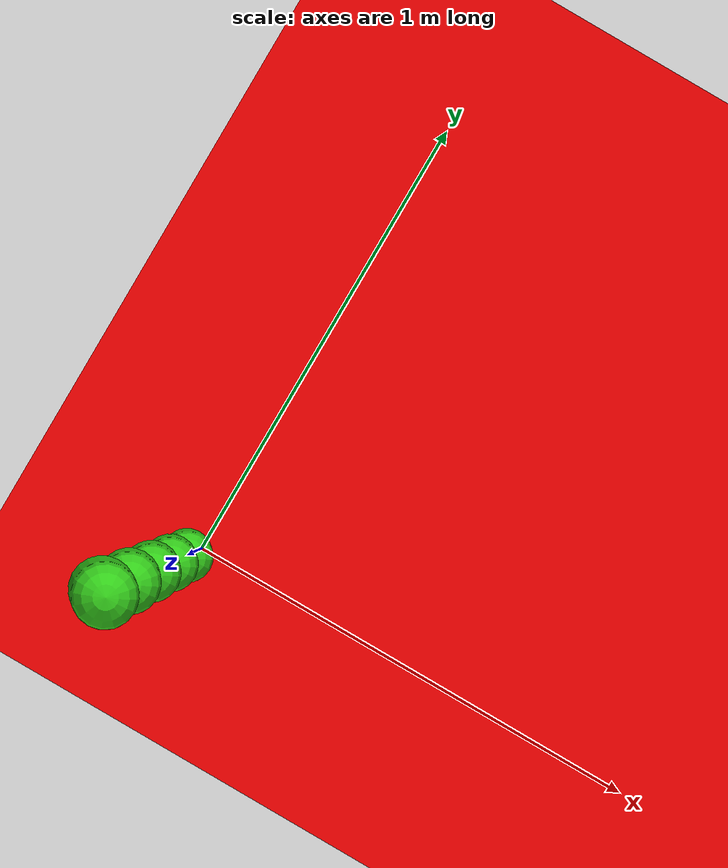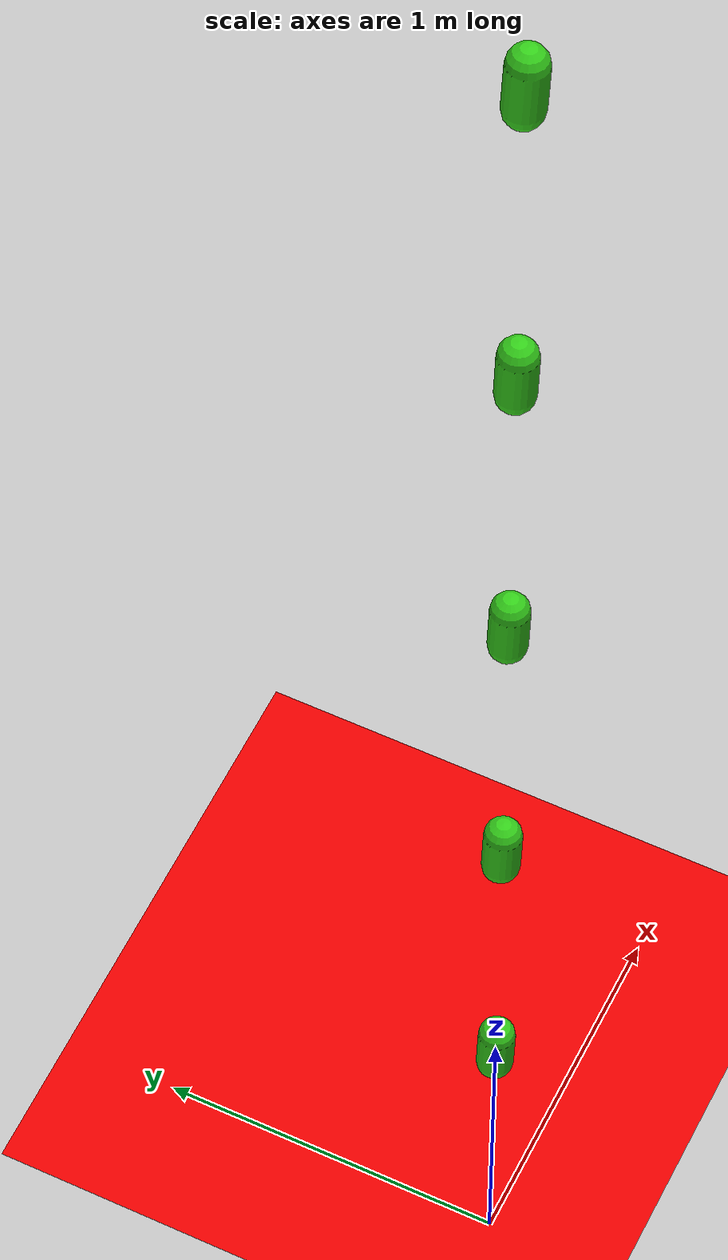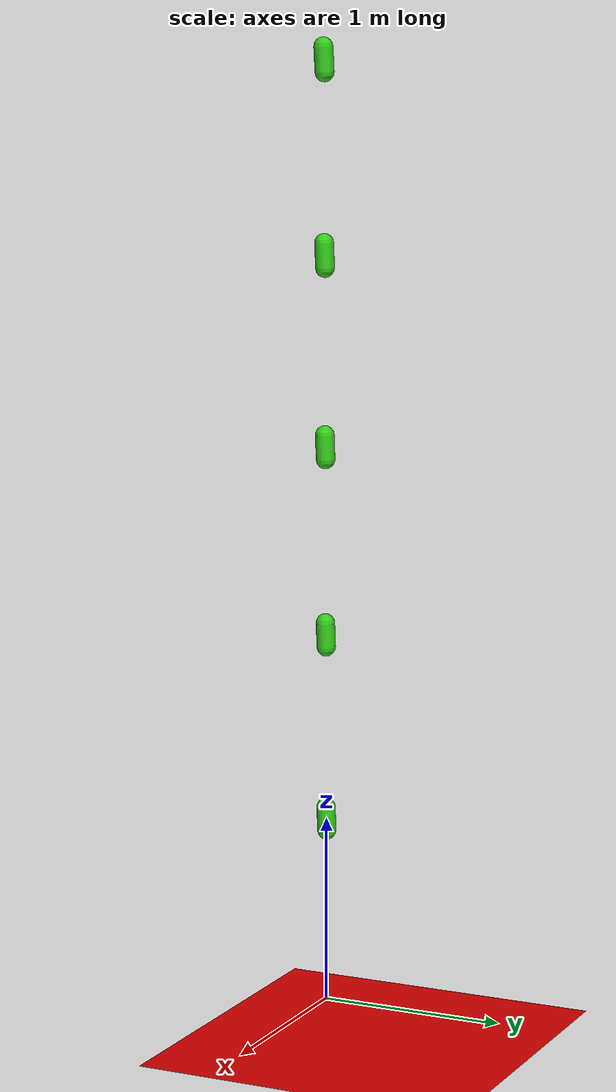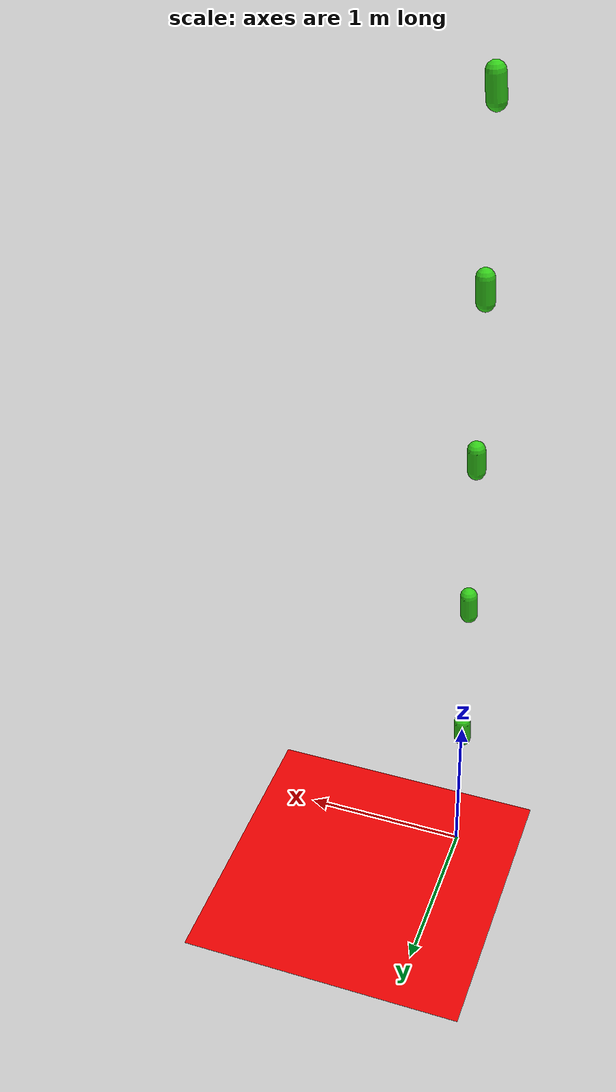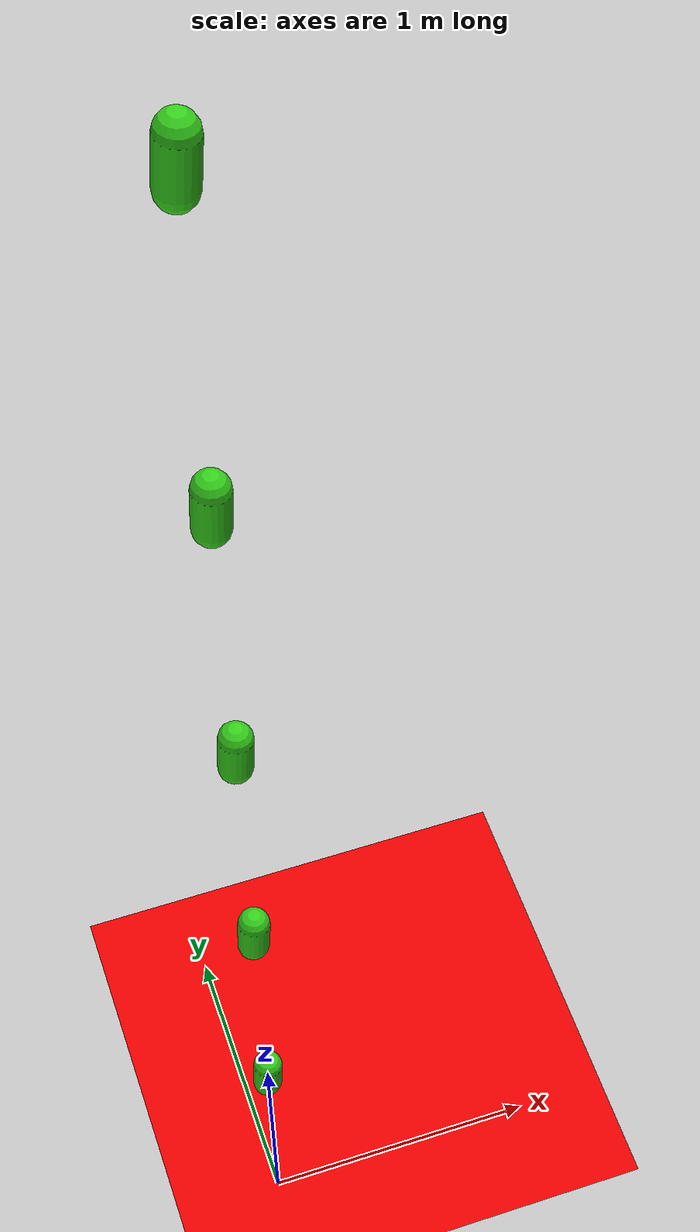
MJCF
<mujoco>
    <worldbody>
        <light name="light0" diffuse=".5 .5 .5" pos="0 0 3" dir="0 0 -1"/>
        <geom name="geom0" type="plane" size="1000 1000 0.1" rgba=".9 0 0 1"/>
        <body name="body1" pos="0 0 1" euler="0.5 3.0 1.5">
            <joint name="joint0" type="free"/>
            <geom name="geom1" type="capsule" size=".05 .065" rgba=".2 .8 .1 1"/>
        </body>
        <body name="body2" pos="0 0 2" euler="0.5 3.0 1.5">
            <joint name="joint1" type="free"/>
            <geom name="geom2" type="capsule" size=".05 .065" rgba=".2 .8 .1 1"/>
        </body>
        <body name="body3" pos="0 0 3" euler="0.5 3.0 1.5">
            <joint name="joint2" type="free"/>
            <geom name="geom3" type="capsule" size=".05 .065" rgba=".2 .8 .1 1"/>
        </body>
        <body name="body4" pos="0 0 4" euler="0.5 3.0 1.5">
            <joint name="joint3" type="free"/>
            <geom name="geom4" type="capsule" size=".05 .065" rgba=".2 .8 .1 1"/>
        </body>
        <body name="body5" pos="0 0 5" euler="0.5 5.0 1.5">
            <joint name="joint4" type="free"/>
            <geom name="geom5" type="capsule" size=".05 .065" rgba=".2 .8 .1 1"/>
        </body>
    </worldbody>
</mujoco>
